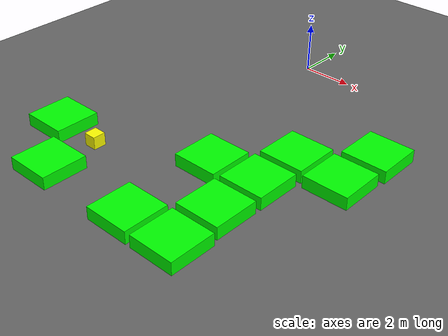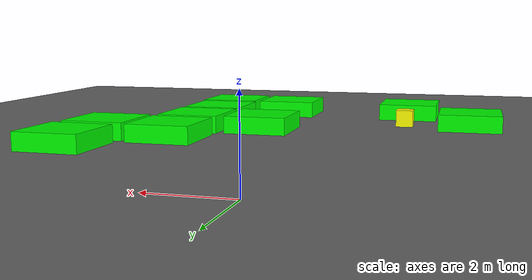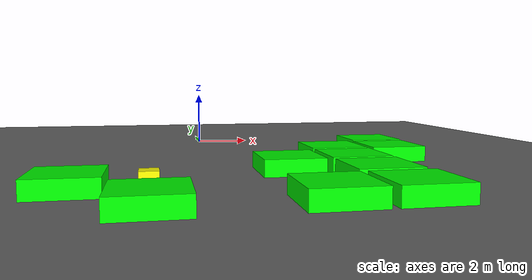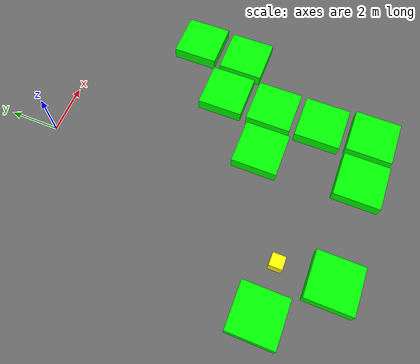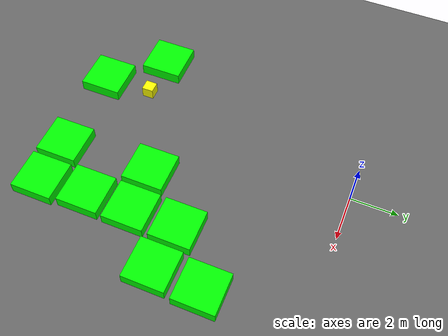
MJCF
<mujoco model="lvl5_corridor_obs10_dmid_depth2_seed47">
    <compiler angle="degree" coordinate="local" inertiafromgeom="true"/>
    <option integrator="RK4" timestep="0.01"/>

    <asset>
        <texture builtin="gradient" height="100" rgb1="0.6 0.8 1" rgb2="0 0 0" type="skybox" width="100"/>
        <texture name="floor_texture" type="2d" builtin="checker" width="100" height="100" rgb1="0 0 0" rgb2="0.8 0.8 0.8"/>
        <material name="MatPlane" reflectance="0.5" shininess="1" specular="1" texrepeat="10 10" texture="floor_texture"/>
    </asset>

    <!-- Excluding the contact between the agent and the goal, and the agent and the floor -->
    <contact>
        <exclude body1="agent" body2="goal"/>
        <exclude body1 = "agent" body2 = "floor"/>
    </contact>

    <extension>
        <plugin plugin = "mujoco.pid">
            <instance name = "pid1">
                <config key="kp" value="2"/>
                <config key="ki" value="0"/>
                <config key="kd" value="55"/>
            </instance>
        </plugin>
    </extension>

    <worldbody>
        <light cutoff="100" diffuse="1 1 1" dir="-0 0 -1.3" directional="true" exponent="1" pos="0 0 1.3" specular=".1 .1 .1"/>
        <body name="floor" pos="0 0 0">
            <geom name="floor_geom" type="plane" size="20 20 0.1" material="MatPlane"/>
        </body>

                <body name="goal" pos="0.0000 0.0000 0">
            <geom name="goal_geom" type="plane" size="0.5 0.5 1" pos="0 0 0" rgba="1 0 0 1"/>
        </body>

                <body name="agent" pos="-2.0000 -10.0000 0.250">
            <joint name="j1" type="slide" axis ="1 0 0 "/>
            <joint name="j2" type="slide" axis ="0 1 0 "/>
            <geom name="agent_geom" type="box" size="0.25 0.25 0.250" rgba="1 1 0 1"/>
        </body>

        <body name="obstacle1" pos="6.0682 -4.0107 0.250">  <geom name="obstacle1_geom" type="box" size="0.9000 0.9000 0.250" rgba="0 1 0 1"/></body>
        <body name="obstacle2" pos="3.9924 -5.9163 0.250">  <geom name="obstacle2_geom" type="box" size="0.9000 0.9000 0.250" rgba="0 1 0 1"/></body>
        <body name="obstacle3" pos="5.9686 -6.0851 0.250">  <geom name="obstacle3_geom" type="box" size="0.9000 0.9000 0.250" rgba="0 1 0 1"/></body>
        <body name="obstacle4" pos="1.9755 -8.0627 0.250">  <geom name="obstacle4_geom" type="box" size="0.9000 0.9000 0.250" rgba="0 1 0 1"/></body>
        <body name="obstacle5" pos="3.9740 -7.9637 0.250">  <geom name="obstacle5_geom" type="box" size="0.9000 0.9000 0.250" rgba="0 1 0 1"/></body>
        <body name="obstacle6" pos="-3.9329 -9.9424 0.250">  <geom name="obstacle6_geom" type="box" size="0.9000 0.9000 0.250" rgba="0 1 0 1"/></body>
        <body name="obstacle7" pos="3.9580 -9.9857 0.250">  <geom name="obstacle7_geom" type="box" size="0.9000 0.9000 0.250" rgba="0 1 0 1"/></body>
        <body name="obstacle8" pos="-1.9673 -12.0562 0.250">  <geom name="obstacle8_geom" type="box" size="0.9000 0.9000 0.250" rgba="0 1 0 1"/></body>
        <body name="obstacle9" pos="2.0724 -12.0331 0.250">  <geom name="obstacle9_geom" type="box" size="0.9000 0.9000 0.250" rgba="0 1 0 1"/></body>
        <body name="obstacle10" pos="4.0743 -12.0290 0.250">  <geom name="obstacle10_geom" type="box" size="0.9000 0.9000 0.250" rgba="0 1 0 1"/></body>

    </worldbody>

    <sensor>
<!-- SENSORS -->

        <distance name="dist1" geom1="agent_geom" geom2="obstacle1_geom" cutoff="1.5"/>
        <distance name="dist2" geom1="agent_geom" geom2="obstacle2_geom" cutoff="1.5"/>
        <distance name="dist3" geom1="agent_geom" geom2="obstacle3_geom" cutoff="1.5"/>
        <distance name="dist4" geom1="agent_geom" geom2="obstacle4_geom" cutoff="1.5"/>
        <distance name="dist5" geom1="agent_geom" geom2="obstacle5_geom" cutoff="1.5"/>
        <distance name="dist6" geom1="agent_geom" geom2="obstacle6_geom" cutoff="1.5"/>
        <distance name="dist7" geom1="agent_geom" geom2="obstacle7_geom" cutoff="1.5"/>
        <distance name="dist8" geom1="agent_geom" geom2="obstacle8_geom" cutoff="1.5"/>
        <distance name="dist9" geom1="agent_geom" geom2="obstacle9_geom" cutoff="1.5"/>
        <distance name="dist10" geom1="agent_geom" geom2="obstacle10_geom" cutoff="1.5"/>
</sensor>

    <actuator>
        <plugin joint="j1" plugin="mujoco.pid" instance="pid1" />
        <plugin joint="j2" plugin="mujoco.pid" instance="pid1"/>
    </actuator>
</mujoco>
